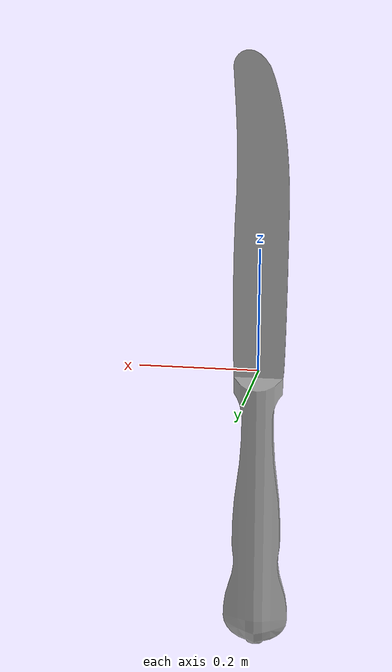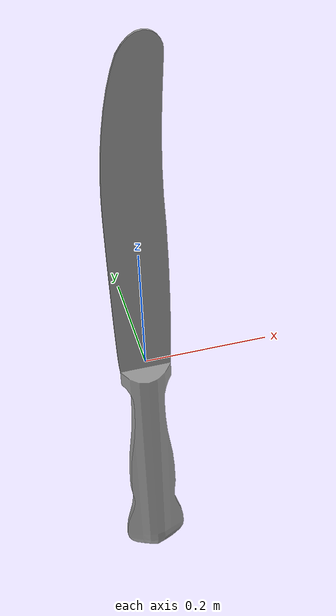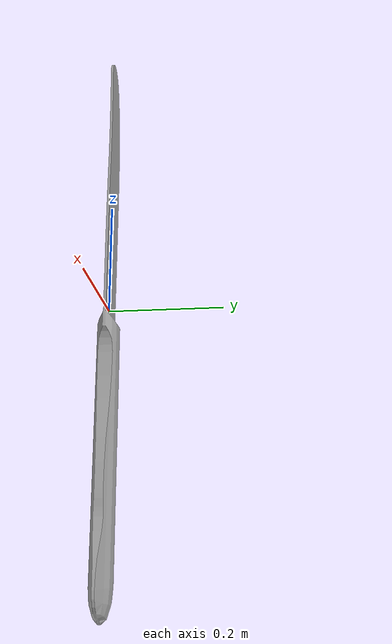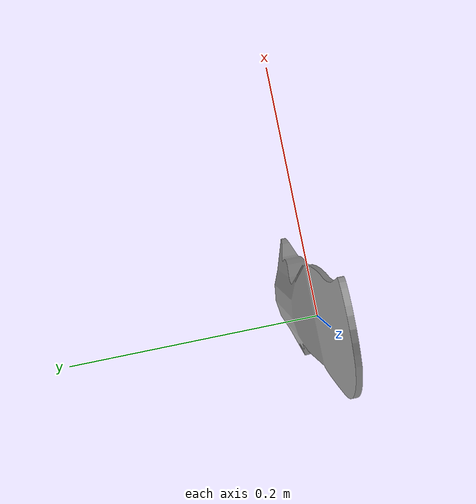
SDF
<?xml version="1.0" ?>
<sdf version="1.5">
  <model name='cutlery2'>
    <pose>0 0 0 0 0 0</pose>
    <static>1</static>
    <link name='body'>
      <collision name="cutlery2-coll">
        <pose>0 0 -0.5 0 0 0</pose>
        <geometry>
          <mesh>
            <uri>model://cutlery2/meshes/cutlery2.dae</uri>
          </mesh>
        </geometry>
      </collision>
      <visual name='cutlery2'>
        <cast_shadows>1</cast_shadows>
        <pose>0 0 -0.5 0 0 0</pose>
        <geometry>
          <mesh>
            <uri>model://cutlery2/meshes/cutlery2.dae</uri>
          </mesh>
        </geometry>
      </visual>
      <velocity_decay>
        <linear>0</linear>
        <angular>0</angular>
      </velocity_decay>
      <self_collide>0</self_collide>
      <kinematic>0</kinematic>
      <gravity>1</gravity>
    </link>
  </model>

</sdf>
